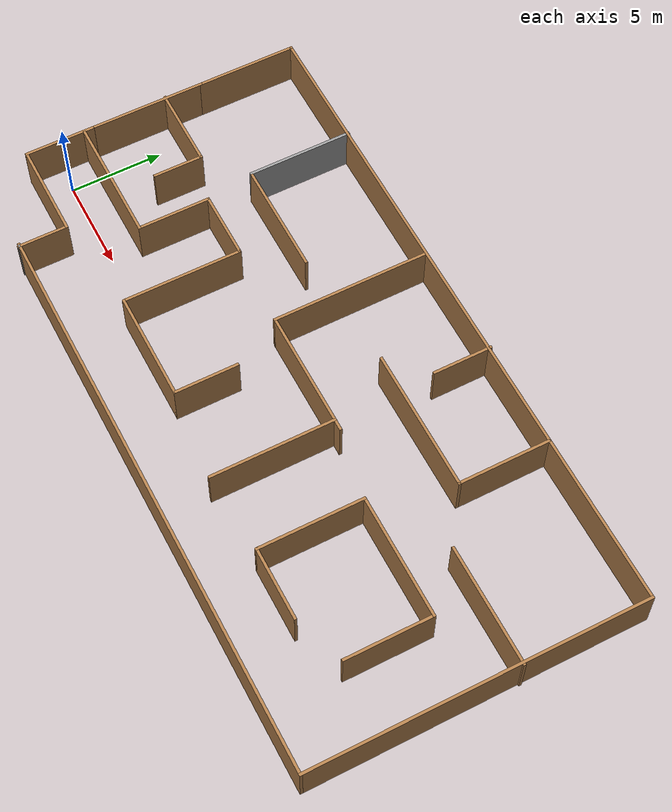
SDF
<?xml version='1.0'?>
<sdf version='1.7'>
  <model name='WoodMaze'>
    <pose>16.4867 4.73957 0 0 -0 0</pose>
    <link name='Wall_0'>
      <collision name='Wall_0_Collision'>
        <geometry>
          <box>
            <size>5.25 0.15 2.5</size>
          </box>
        </geometry>
        <pose>0 0 1.25 0 -0 0</pose>
      </collision>
      <visual name='Wall_0_Visual'>
        <pose>0 0 1.25 0 -0 0</pose>
        <geometry>
          <box>
            <size>5.25 0.15 2.5</size>
          </box>
        </geometry>
        <material>
          <script>
            <uri>file://media/materials/scripts/gazebo.material</uri>
            <name>Gazebo/Wood</name>
          </script>
          <ambient>1 1 1 1</ambient>
        </material>
        <meta>
          <layer>0</layer>
        </meta>
      </visual>
      <pose>-15.3867 -6.39957 0 0 -0 0</pose>
    </link>
    <link name='Wall_1'>
      <collision name='Wall_1_Collision'>
        <geometry>
          <box>
            <size>2.75 0.15 2.5</size>
          </box>
        </geometry>
        <pose>0 0 1.25 0 -0 0</pose>
      </collision>
      <visual name='Wall_1_Visual'>
        <pose>0 0 1.25 0 -0 0</pose>
        <geometry>
          <box>
            <size>2.75 0.15 2.5</size>
          </box>
        </geometry>
        <material>
          <script>
            <uri>file://media/materials/scripts/gazebo.material</uri>
            <name>Gazebo/Wood</name>
          </script>
          <ambient>1 1 1 1</ambient>
        </material>
        <meta>
          <layer>0</layer>
        </meta>
      </visual>
      <pose>-12.8367 -7.69957 0 0 -0 -1.5708</pose>
    </link>
    <link name='Wall_10'>
      <collision name='Wall_10_Collision'>
        <geometry>
          <box>
            <size>4 0.15 2.5</size>
          </box>
        </geometry>
        <pose>0 0 1.25 0 -0 0</pose>
      </collision>
      <visual name='Wall_10_Visual'>
        <pose>0 0 1.25 0 -0 0</pose>
        <geometry>
          <box>
            <size>4 0.15 2.5</size>
          </box>
        </geometry>
        <material>
          <script>
            <uri>file://media/materials/scripts/gazebo.material</uri>
            <name>Gazebo/Wood</name>
          </script>
          <ambient>1 1 1 1</ambient>
        </material>
        <meta>
          <layer>0</layer>
        </meta>
      </visual>
      <pose>-17.9367 -4.47457 0 0 -0 1.5708</pose>
    </link>
    <link name='Wall_11'>
      <collision name='Wall_11_Collision'>
        <geometry>
          <box>
            <size>6.25 0.15 2.5</size>
          </box>
        </geometry>
        <pose>0 0 1.25 0 -0 0</pose>
      </collision>
      <visual name='Wall_11_Visual'>
        <pose>0 0 1.25 0 -0 0</pose>
        <geometry>
          <box>
            <size>6.25 0.15 2.5</size>
          </box>
        </geometry>
        <material>
          <script>
            <uri>file://media/materials/scripts/gazebo.material</uri>
            <name>Gazebo/Wood</name>
          </script>
          <ambient>1 1 1 1</ambient>
        </material>
        <meta>
          <layer>0</layer>
        </meta>
      </visual>
      <pose>-17.9367 0.500428 0 0 -0 1.5708</pose>
    </link>
    <link name='Wall_12'>
      <collision name='Wall_12_Collision'>
        <geometry>
          <box>
            <size>5.5 0.15 2.5</size>
          </box>
        </geometry>
        <pose>0 0 1.25 0 -0 0</pose>
      </collision>
      <visual name='Wall_12_Visual'>
        <pose>0 0 1.25 0 -0 0</pose>
        <geometry>
          <box>
            <size>5.5 0.15 2.5</size>
          </box>
        </geometry>
        <material>
          <script>
            <uri>file://media/materials/scripts/gazebo.material</uri>
            <name>Gazebo/Wood</name>
          </script>
          <ambient>1 1 1 1</ambient>
        </material>
        <meta>
          <layer>0</layer>
        </meta>
      </visual>
      <pose>-17.9367 6.22543 0 0 -0 1.5708</pose>
    </link>
    <link name='Wall_13'>
      <collision name='Wall_13_Collision'>
        <geometry>
          <box>
            <size>36 0.15 2.5</size>
          </box>
        </geometry>
        <pose>0 0 1.25 0 -0 0</pose>
      </collision>
      <visual name='Wall_13_Visual'>
        <pose>0 0 1.25 0 -0 0</pose>
        <geometry>
          <box>
            <size>36 0.15 2.5</size>
          </box>
        </geometry>
        <material>
          <script>
            <uri>file://media/materials/scripts/gazebo.material</uri>
            <name>Gazebo/Wood</name>
          </script>
          <ambient>1 1 1 1</ambient>
        </material>
        <meta>
          <layer>0</layer>
        </meta>
      </visual>
      <pose>-0.011699 8.90043 0 0 -0 0</pose>
    </link>
    <link name='Wall_14'>
      <collision name='Wall_14_Collision'>
        <geometry>
          <box>
            <size>18 0.15 2.5</size>
          </box>
        </geometry>
        <pose>0 0 1.25 0 -0 0</pose>
      </collision>
      <visual name='Wall_14_Visual'>
        <pose>0 0 1.25 0 -0 0</pose>
        <geometry>
          <box>
            <size>18 0.15 2.5</size>
          </box>
        </geometry>
        <material>
          <script>
            <uri>file://media/materials/scripts/gazebo.material</uri>
            <name>Gazebo/Wood</name>
          </script>
          <ambient>0.921569 0.807843 0.615686 1</ambient>
        </material>
        <meta>
          <layer>0</layer>
        </meta>
      </visual>
      <pose>17.9133 -0.024572 0 0 -0 -1.5708</pose>
    </link>
    <link name='Wall_16'>
      <collision name='Wall_16_Collision'>
        <geometry>
          <box>
            <size>31 0.15 2.5</size>
          </box>
        </geometry>
        <pose>0 0 1.25 0 -0 0</pose>
      </collision>
      <visual name='Wall_16_Visual'>
        <pose>0 0 1.25 0 -0 0</pose>
        <geometry>
          <box>
            <size>31 0.15 2.5</size>
          </box>
        </geometry>
        <material>
          <script>
            <uri>file://media/materials/scripts/gazebo.material</uri>
            <name>Gazebo/Wood</name>
          </script>
          <ambient>1 1 1 1</ambient>
        </material>
        <meta>
          <layer>0</layer>
        </meta>
      </visual>
      <pose>2.4883 -8.94957 0 0 -0 3.14159</pose>
    </link>
    <link name='Wall_18'>
      <collision name='Wall_18_Collision'>
        <geometry>
          <box>
            <size>5.75 0.15 2.5</size>
          </box>
        </geometry>
        <pose>0 0 1.25 0 -0 0</pose>
      </collision>
      <visual name='Wall_18_Visual'>
        <pose>0 0 1.25 0 -0 0</pose>
        <geometry>
          <box>
            <size>5.75 0.15 2.5</size>
          </box>
        </geometry>
        <material>
          <script>
            <uri>file://media/materials/scripts/gazebo.material</uri>
            <name>Gazebo/Grey</name>
          </script>
          <ambient>1 1 1 1</ambient>
        </material>
        <meta>
          <layer>0</layer>
        </meta>
      </visual>
      <pose>-11.489 6.12882 0 0 -0 -1.5708</pose>
    </link>
    <link name='Wall_19'>
      <collision name='Wall_19_Collision'>
        <geometry>
          <box>
            <size>6.25 0.15 2.5</size>
          </box>
        </geometry>
        <pose>0 0 1.25 0 -0 0</pose>
      </collision>
      <visual name='Wall_19_Visual'>
        <pose>0 0 1.25 0 -0 0</pose>
        <geometry>
          <box>
            <size>6.25 0.15 2.5</size>
          </box>
        </geometry>
        <material>
          <script>
            <uri>file://media/materials/scripts/gazebo.material</uri>
            <name>Gazebo/Wood</name>
          </script>
          <ambient>1 1 1 1</ambient>
        </material>
        <meta>
          <layer>0</layer>
        </meta>
      </visual>
      <pose>-8.43895 3.32882 0 0 -0 0</pose>
    </link>
    <link name='Wall_2'>
      <collision name='Wall_2_Collision'>
        <geometry>
          <box>
            <size>0.15 0.15 2.5</size>
          </box>
        </geometry>
        <pose>0 0 1.25 0 -0 0</pose>
      </collision>
      <visual name='Wall_2_Visual'>
        <pose>0 0 1.25 0 -0 0</pose>
        <geometry>
          <box>
            <size>0.15 0.15 2.5</size>
          </box>
        </geometry>
        <material>
          <script>
            <uri>file://media/materials/scripts/gazebo.material</uri>
            <name>Gazebo/Grey</name>
          </script>
          <ambient>1 1 1 1</ambient>
        </material>
        <meta>
          <layer>0</layer>
        </meta>
      </visual>
      <pose>-12.8367 -8.99957 0 0 -0 0</pose>
    </link>
    <link name='Wall_21'>
      <collision name='Wall_21_Collision'>
        <geometry>
          <box>
            <size>4.5 0.15 2.5</size>
          </box>
        </geometry>
        <pose>0 0 1.25 0 -0 0</pose>
      </collision>
      <visual name='Wall_21_Visual'>
        <pose>0 0 1.25 0 -0 0</pose>
        <geometry>
          <box>
            <size>4.5 0.15 2.5</size>
          </box>
        </geometry>
        <material>
          <script>
            <uri>file://media/materials/scripts/gazebo.material</uri>
            <name>Gazebo/Wood</name>
          </script>
          <ambient>1 1 1 1</ambient>
        </material>
        <meta>
          <layer>0</layer>
        </meta>
      </visual>
      <pose>-15.8236 1.49932 0 0 -0 0</pose>
    </link>
    <link name='Wall_22'>
      <collision name='Wall_22_Collision'>
        <geometry>
          <box>
            <size>2.75 0.15 2.5</size>
          </box>
        </geometry>
        <pose>0 0 1.25 0 -0 0</pose>
      </collision>
      <visual name='Wall_22_Visual'>
        <pose>0 0 1.25 0 -0 0</pose>
        <geometry>
          <box>
            <size>2.75 0.15 2.5</size>
          </box>
        </geometry>
        <material>
          <script>
            <uri>file://media/materials/scripts/gazebo.material</uri>
            <name>Gazebo/Wood</name>
          </script>
          <ambient>1 1 1 1</ambient>
        </material>
        <meta>
          <layer>0</layer>
        </meta>
      </visual>
      <pose>-13.6486 0.199324 0 0 -0 -1.5708</pose>
    </link>
    <link name='Wall_24'>
      <collision name='Wall_24_Collision'>
        <geometry>
          <box>
            <size>7 0.15 2.5</size>
          </box>
        </geometry>
        <pose>0 0 1.25 0 -0 0</pose>
      </collision>
      <visual name='Wall_24_Visual'>
        <pose>0 0 1.25 0 -0 0</pose>
        <geometry>
          <box>
            <size>7 0.15 2.5</size>
          </box>
        </geometry>
        <material>
          <script>
            <uri>file://media/materials/scripts/gazebo.material</uri>
            <name>Gazebo/Wood</name>
          </script>
          <ambient>1 1 1 1</ambient>
        </material>
        <meta>
          <layer>0</layer>
        </meta>
      </visual>
      <pose>-14.5028 -3.17064 0 0 -0 0</pose>
    </link>
    <link name='Wall_26'>
      <collision name='Wall_26_Collision'>
        <geometry>
          <box>
            <size>4 0.15 2.5</size>
          </box>
        </geometry>
        <pose>0 0 1.25 0 -0 0</pose>
      </collision>
      <visual name='Wall_26_Visual'>
        <pose>0 0 1.25 0 -0 0</pose>
        <geometry>
          <box>
            <size>4 0.15 2.5</size>
          </box>
        </geometry>
        <material>
          <script>
            <uri>file://media/materials/scripts/gazebo.material</uri>
            <name>Gazebo/Wood</name>
          </script>
          <ambient>1 1 1 1</ambient>
        </material>
        <meta>
          <layer>0</layer>
        </meta>
      </visual>
      <pose>-11.0778 -1.24564 0 0 -0 1.5708</pose>
    </link>
    <link name='Wall_27'>
      <collision name='Wall_27_Collision'>
        <geometry>
          <box>
            <size>3.75 0.15 2.5</size>
          </box>
        </geometry>
        <pose>0 0 1.25 0 -0 0</pose>
      </collision>
      <visual name='Wall_27_Visual'>
        <pose>0 0 1.25 0 -0 0</pose>
        <geometry>
          <box>
            <size>3.75 0.15 2.5</size>
          </box>
        </geometry>
        <material>
          <script>
            <uri>file://media/materials/scripts/gazebo.material</uri>
            <name>Gazebo/Wood</name>
          </script>
          <ambient>1 1 1 1</ambient>
        </material>
        <meta>
          <layer>0</layer>
        </meta>
      </visual>
      <pose>-9.27785 0.679358 0 0 -0 0</pose>
    </link>
    <link name='Wall_28'>
      <collision name='Wall_28_Collision'>
        <geometry>
          <box>
            <size>6.5 0.15 2.5</size>
          </box>
        </geometry>
        <pose>0 0 1.25 0 -0 0</pose>
      </collision>
      <visual name='Wall_28_Visual'>
        <pose>0 0 1.25 0 -0 0</pose>
        <geometry>
          <box>
            <size>6.5 0.15 2.5</size>
          </box>
        </geometry>
        <material>
          <script>
            <uri>file://media/materials/scripts/gazebo.material</uri>
            <name>Gazebo/Wood</name>
          </script>
          <ambient>1 1 1 1</ambient>
        </material>
        <meta>
          <layer>0</layer>
        </meta>
      </visual>
      <pose>-7.47785 -2.49564 0 0 -0 -1.5708</pose>
    </link>
    <link name='Wall_29'>
      <collision name='Wall_29_Collision'>
        <geometry>
          <box>
            <size>6 0.15 2.5</size>
          </box>
        </geometry>
        <pose>0 0 1.25 0 -0 0</pose>
      </collision>
      <visual name='Wall_29_Visual'>
        <pose>0 0 1.25 0 -0 0</pose>
        <geometry>
          <box>
            <size>6 0.15 2.5</size>
          </box>
        </geometry>
        <material>
          <script>
            <uri>file://media/materials/scripts/gazebo.material</uri>
            <name>Gazebo/Wood</name>
          </script>
          <ambient>1 1 1 1</ambient>
        </material>
        <meta>
          <layer>0</layer>
        </meta>
      </visual>
      <pose>-4.55285 -5.67064 0 0 -0 0</pose>
    </link>
    <link name='Wall_30'>
      <collision name='Wall_30_Collision'>
        <geometry>
          <box>
            <size>3.5 0.15 2.5</size>
          </box>
        </geometry>
        <pose>0 0 1.25 0 -0 0</pose>
      </collision>
      <visual name='Wall_30_Visual'>
        <pose>0 0 1.25 0 -0 0</pose>
        <geometry>
          <box>
            <size>3.5 0.15 2.5</size>
          </box>
        </geometry>
        <material>
          <script>
            <uri>file://media/materials/scripts/gazebo.material</uri>
            <name>Gazebo/Wood</name>
          </script>
          <ambient>1 1 1 1</ambient>
        </material>
        <meta>
          <layer>0</layer>
        </meta>
      </visual>
      <pose>-1.62785 -3.99564 0 0 -0 1.5708</pose>
    </link>
    <link name='Wall_33'>
      <collision name='Wall_33_Collision'>
        <geometry>
          <box>
            <size>8.5 0.15 2.5</size>
          </box>
        </geometry>
        <pose>0 0 1.25 0 -0 0</pose>
      </collision>
      <visual name='Wall_33_Visual'>
        <pose>0 0 1.25 0 -0 0</pose>
        <geometry>
          <box>
            <size>8.5 0.15 2.5</size>
          </box>
        </geometry>
        <material>
          <script>
            <uri>file://media/materials/scripts/gazebo.material</uri>
            <name>Gazebo/Wood</name>
          </script>
          <ambient>1 1 1 1</ambient>
        </material>
        <meta>
          <layer>0</layer>
        </meta>
      </visual>
      <pose>-3.06886 4.6123 0 0 -0 -1.5708</pose>
    </link>
    <link name='Wall_34'>
      <collision name='Wall_34_Collision'>
        <geometry>
          <box>
            <size>7 0.15 2.5</size>
          </box>
        </geometry>
        <pose>0 0 1.25 0 -0 0</pose>
      </collision>
      <visual name='Wall_34_Visual'>
        <pose>0 0 1.25 0 -0 0</pose>
        <geometry>
          <box>
            <size>7 0.15 2.5</size>
          </box>
        </geometry>
        <material>
          <script>
            <uri>file://media/materials/scripts/gazebo.material</uri>
            <name>Gazebo/Wood</name>
          </script>
          <ambient>1 1 1 1</ambient>
        </material>
        <meta>
          <layer>0</layer>
        </meta>
      </visual>
      <pose>0.356137 0.437301 0 0 -0 0</pose>
    </link>
    <link name='Wall_36'>
      <collision name='Wall_36_Collision'>
        <geometry>
          <box>
            <size>5 0.15 2.5</size>
          </box>
        </geometry>
        <pose>0 0 1.25 0 -0 0</pose>
      </collision>
      <visual name='Wall_36_Visual'>
        <pose>0 0 1.25 0 -0 0</pose>
        <geometry>
          <box>
            <size>5 0.15 2.5</size>
          </box>
        </geometry>
        <material>
          <script>
            <uri>file://media/materials/scripts/gazebo.material</uri>
            <name>Gazebo/Wood</name>
          </script>
          <ambient>1 1 1 1</ambient>
        </material>
        <meta>
          <layer>0</layer>
        </meta>
      </visual>
      <pose>8.88908 6.43306 0 0 -0 -1.5708</pose>
    </link>
    <link name='Wall_37'>
      <collision name='Wall_37_Collision'>
        <geometry>
          <box>
            <size>7.75 0.15 2.5</size>
          </box>
        </geometry>
        <pose>0 0 1.25 0 -0 0</pose>
      </collision>
      <visual name='Wall_37_Visual'>
        <pose>0 0 1.25 0 -0 0</pose>
        <geometry>
          <box>
            <size>7.75 0.15 2.5</size>
          </box>
        </geometry>
        <material>
          <script>
            <uri>file://media/materials/scripts/gazebo.material</uri>
            <name>Gazebo/Wood</name>
          </script>
          <ambient>0.988235 0.913725 0.309804 1</ambient>
        </material>
        <meta>
          <layer>0</layer>
        </meta>
      </visual>
      <pose>5.08908 4.00806 0 0 -0 3.14159</pose>
    </link>
    <link name='Wall_39'>
      <collision name='Wall_39_Collision'>
        <geometry>
          <box>
            <size>3.25 0.15 2.5</size>
          </box>
        </geometry>
        <pose>0 0 1.25 0 -0 0</pose>
      </collision>
      <visual name='Wall_39_Visual'>
        <pose>0 0 1.25 0 -0 0</pose>
        <geometry>
          <box>
            <size>3.25 0.15 2.5</size>
          </box>
        </geometry>
        <material>
          <script>
            <uri>file://media/materials/scripts/gazebo.material</uri>
            <name>Gazebo/Wood</name>
          </script>
          <ambient>1 1 1 1</ambient>
        </material>
        <meta>
          <layer>0</layer>
        </meta>
      </visual>
      <pose>3.15776 7.44957 0 0 -0 -1.5708</pose>
    </link>
    <link name='Wall_41'>
      <collision name='Wall_41_Collision'>
        <geometry>
          <box>
            <size>6.5 0.15 2.5</size>
          </box>
        </geometry>
        <pose>0 0 1.25 0 -0 0</pose>
      </collision>
      <visual name='Wall_41_Visual'>
        <pose>0 0 1.25 0 -0 0</pose>
        <geometry>
          <box>
            <size>6.5 0.15 2.5</size>
          </box>
        </geometry>
        <material>
          <script>
            <uri>file://media/materials/scripts/gazebo.material</uri>
            <name>Gazebo/Wood</name>
          </script>
          <ambient>1 1 1 1</ambient>
        </material>
        <meta>
          <layer>0</layer>
        </meta>
      </visual>
      <pose>14.8236 2.13614 0 0 -0 0</pose>
    </link>
    <link name='Wall_43'>
      <collision name='Wall_43_Collision'>
        <geometry>
          <box>
            <size>6.75 0.15 2.5</size>
          </box>
        </geometry>
        <pose>0 0 1.25 0 -0 0</pose>
      </collision>
      <visual name='Wall_43_Visual'>
        <pose>0 0 1.25 0 -0 0</pose>
        <geometry>
          <box>
            <size>6.75 0.15 2.5</size>
          </box>
        </geometry>
        <material>
          <script>
            <uri>file://media/materials/scripts/gazebo.material</uri>
            <name>Gazebo/Wood</name>
          </script>
          <ambient>1 1 1 1</ambient>
        </material>
        <meta>
          <layer>0</layer>
        </meta>
      </visual>
      <pose>3.22851 -2.86203 0 0 -0 -1.5708</pose>
    </link>
    <link name='Wall_45'>
      <collision name='Wall_45_Collision'>
        <geometry>
          <box>
            <size>5.75 0.15 2.5</size>
          </box>
        </geometry>
        <pose>0 0 1.25 0 -0 0</pose>
      </collision>
      <visual name='Wall_45_Visual'>
        <pose>0 0 1.25 0 -0 0</pose>
        <geometry>
          <box>
            <size>5.75 0.15 2.5</size>
          </box>
        </geometry>
        <material>
          <script>
            <uri>file://media/materials/scripts/gazebo.material</uri>
            <name>Gazebo/Wood</name>
          </script>
          <ambient>0.988235 0.913725 0.309804 1</ambient>
        </material>
        <meta>
          <layer>0</layer>
        </meta>
      </visual>
      <pose>7.54469 -3.0696 0 0 -0 -1.5708</pose>
    </link>
    <link name='Wall_46'>
      <collision name='Wall_46_Collision'>
        <geometry>
          <box>
            <size>4 0.15 2.5</size>
          </box>
        </geometry>
        <pose>0 0 1.25 0 -0 0</pose>
      </collision>
      <visual name='Wall_46_Visual'>
        <pose>0 0 1.25 0 -0 0</pose>
        <geometry>
          <box>
            <size>4 0.15 2.5</size>
          </box>
        </geometry>
        <material>
          <script>
            <uri>file://media/materials/scripts/gazebo.material</uri>
            <name>Gazebo/Wood</name>
          </script>
          <ambient>0.988235 0.913725 0.309804 1</ambient>
        </material>
        <meta>
          <layer>0</layer>
        </meta>
      </visual>
      <pose>9.46969 -5.8696 0 0 -0 0</pose>
    </link>
    <link name='Wall_48'>
      <collision name='Wall_48_Collision'>
        <geometry>
          <box>
            <size>6.75 0.15 2.5</size>
          </box>
        </geometry>
        <pose>0 0 1.25 0 -0 0</pose>
      </collision>
      <visual name='Wall_48_Visual'>
        <pose>0 0 1.25 0 -0 0</pose>
        <geometry>
          <box>
            <size>6.75 0.15 2.5</size>
          </box>
        </geometry>
        <material>
          <script>
            <uri>file://media/materials/scripts/gazebo.material</uri>
            <name>Gazebo/Wood</name>
          </script>
          <ambient>1 1 1 1</ambient>
        </material>
        <meta>
          <layer>0</layer>
        </meta>
      </visual>
      <pose>10.8447 -0.269603 0 0 -0 0</pose>
    </link>
    <link name='Wall_49'>
      <collision name='Wall_49_Collision'>
        <geometry>
          <box>
            <size>4.75 0.15 2.5</size>
          </box>
        </geometry>
        <pose>0 0 1.25 0 -0 0</pose>
      </collision>
      <visual name='Wall_49_Visual'>
        <pose>0 0 1.25 0 -0 0</pose>
        <geometry>
          <box>
            <size>4.75 0.15 2.5</size>
          </box>
        </geometry>
        <material>
          <script>
            <uri>file://media/materials/scripts/gazebo.material</uri>
            <name>Gazebo/Wood</name>
          </script>
          <ambient>1 1 1 1</ambient>
        </material>
        <meta>
          <layer>0</layer>
        </meta>
      </visual>
      <pose>14.1447 -2.5696 0 0 -0 -1.5708</pose>
    </link>
    <static>1</static>
  </model>
</sdf>
